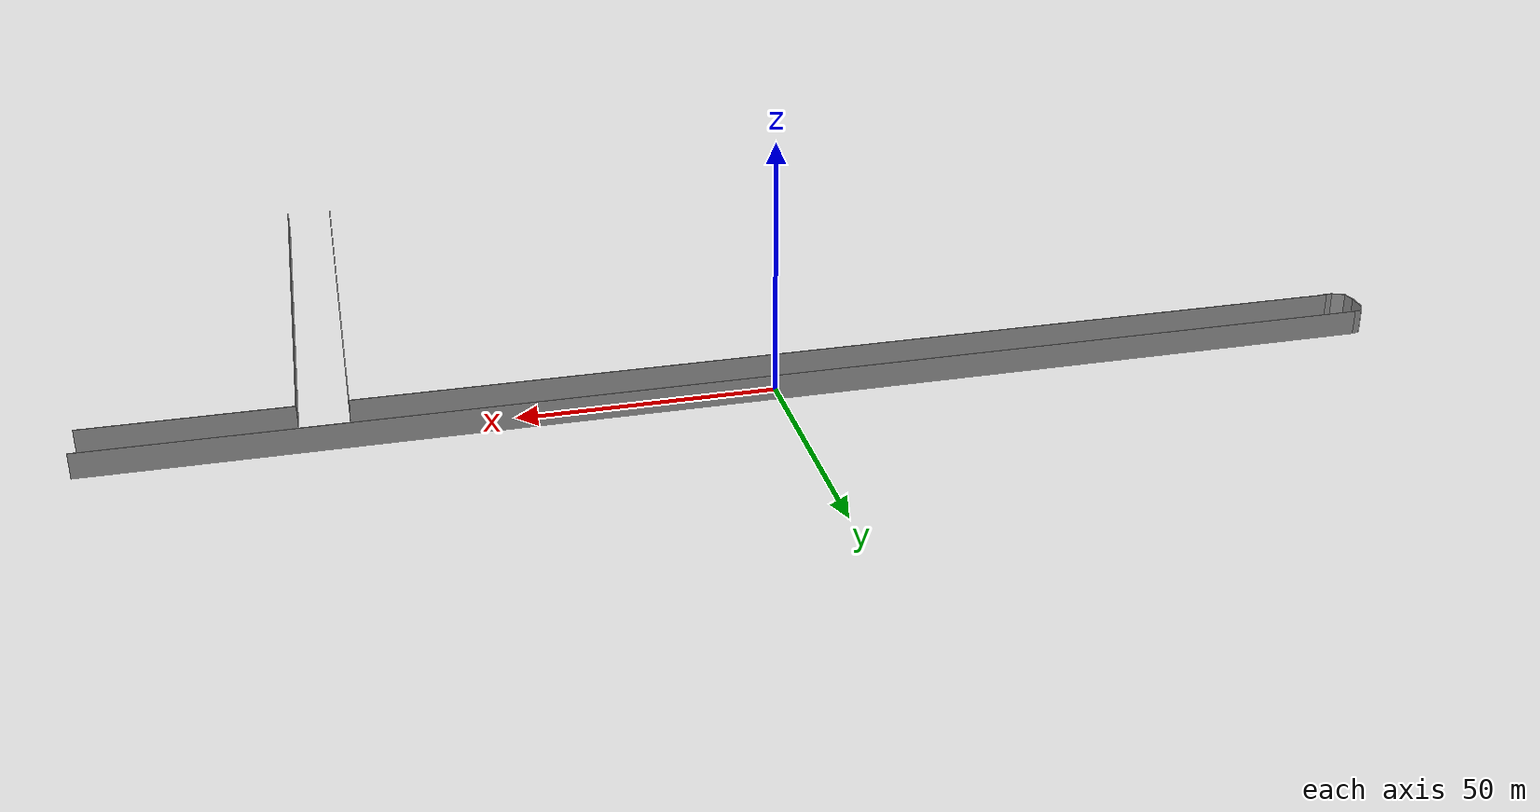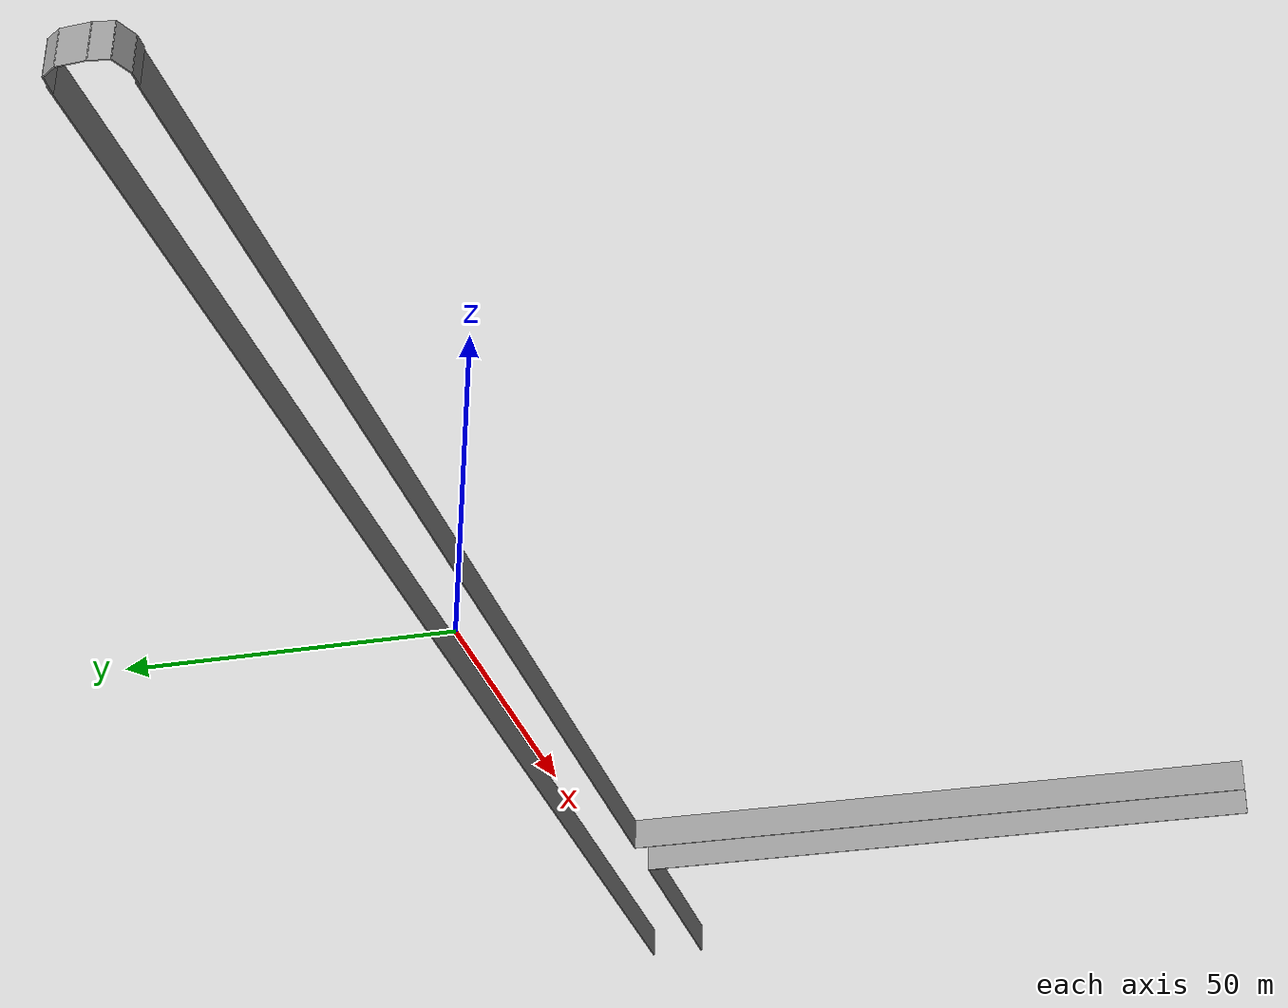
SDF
<?xml version='1.0'?>
<sdf version='1.7'>
  <model name='Model3'>
    <pose>2.35727 -50.523 0 0 -0 0</pose>
    <link name='Wall_53'>
      <collision name='Wall_53_Collision'>
        <geometry>
          <box>
            <size>200 0.15 5</size>
          </box>
        </geometry>
        <pose>0 0 2.5 0 -0 0</pose>
      </collision>
      <visual name='Wall_53_Visual'>
        <pose>0 0 2.5 0 -0 0</pose>
        <geometry>
          <box>
            <size>200 0.15 5</size>
          </box>
        </geometry>
        <material>
          <script>
            <uri>file://media/materials/scripts/gazebo.material</uri>
            <name>Gazebo/Grey</name>
          </script>
          <ambient>1 1 1 1</ambient>
        </material>
        <meta>
          <layer>0</layer>
        </meta>
      </visual>
      <pose>-22.1613 45.415 0 0 -0 0</pose>
    </link>
    <link name='Wall_55'>
      <collision name='Wall_55_Collision'>
        <geometry>
          <box>
            <size>250 0.15 5</size>
          </box>
        </geometry>
        <pose>0 0 2.5 0 -0 0</pose>
      </collision>
      <visual name='Wall_55_Visual'>
        <pose>0 0 2.5 0 -0 0</pose>
        <geometry>
          <box>
            <size>250 0.15 5</size>
          </box>
        </geometry>
        <material>
          <script>
            <uri>file://media/materials/scripts/gazebo.material</uri>
            <name>Gazebo/Grey</name>
          </script>
          <ambient>1 1 1 1</ambient>
        </material>
        <meta>
          <layer>0</layer>
        </meta>
      </visual>
      <pose>1.43773 54.435 0 0 -0 0</pose>
    </link>
    <link name='Wall_59'>
      <collision name='Wall_59_Collision'>
        <geometry>
          <box>
            <size>2 0.15 5</size>
          </box>
        </geometry>
        <pose>0 0 2.5 0 -0 0</pose>
      </collision>
      <visual name='Wall_59_Visual'>
        <pose>0 0 2.5 0 -0 0</pose>
        <geometry>
          <box>
            <size>2 0.15 5</size>
          </box>
        </geometry>
        <material>
          <script>
            <uri>file://media/materials/scripts/gazebo.material</uri>
            <name>Gazebo/Grey</name>
          </script>
          <ambient>1 1 1 1</ambient>
        </material>
        <meta>
          <layer>0</layer>
        </meta>
      </visual>
      <pose>-122.601 45.231 0 0 -0 3.14159</pose>
    </link>
    <link name='Wall_60'>
      <collision name='Wall_60_Collision'>
        <geometry>
          <box>
            <size>2.82065 0.15 5</size>
          </box>
        </geometry>
        <pose>0 0 2.5 0 -0 0</pose>
      </collision>
      <visual name='Wall_60_Visual'>
        <pose>0 0 2.5 0 -0 0</pose>
        <geometry>
          <box>
            <size>2.82065 0.15 5</size>
          </box>
        </geometry>
        <material>
          <script>
            <uri>file://media/materials/scripts/gazebo.material</uri>
            <name>Gazebo/Grey</name>
          </script>
          <ambient>1 1 1 1</ambient>
        </material>
        <meta>
          <layer>0</layer>
        </meta>
      </visual>
      <pose>-124.735 45.799 0 0 -0 2.70223</pose>
    </link>
    <link name='Wall_61'>
      <collision name='Wall_61_Collision'>
        <geometry>
          <box>
            <size>2.60652 0.15 5</size>
          </box>
        </geometry>
        <pose>0 0 2.5 0 -0 0</pose>
      </collision>
      <visual name='Wall_61_Visual'>
        <pose>0 0 2.5 0 -0 0</pose>
        <geometry>
          <box>
            <size>2.60652 0.15 5</size>
          </box>
        </geometry>
        <material>
          <script>
            <uri>file://media/materials/scripts/gazebo.material</uri>
            <name>Gazebo/Grey</name>
          </script>
          <ambient>1 1 1 1</ambient>
        </material>
        <meta>
          <layer>0</layer>
        </meta>
      </visual>
      <pose>-126.147 47.578 0 0 -0 1.73768</pose>
    </link>
    <link name='Wall_62'>
      <collision name='Wall_62_Collision'>
        <geometry>
          <box>
            <size>3.75378 0.15 5</size>
          </box>
        </geometry>
        <pose>0 0 2.5 0 -0 0</pose>
      </collision>
      <visual name='Wall_62_Visual'>
        <pose>0 0 2.5 0 -0 0</pose>
        <geometry>
          <box>
            <size>3.75378 0.15 5</size>
          </box>
        </geometry>
        <material>
          <script>
            <uri>file://media/materials/scripts/gazebo.material</uri>
            <name>Gazebo/Grey</name>
          </script>
          <ambient>1 1 1 1</ambient>
        </material>
        <meta>
          <layer>0</layer>
        </meta>
      </visual>
      <pose>-126.269 50.589 0 0 -0 1.525</pose>
    </link>
    <link name='Wall_63'>
      <collision name='Wall_63_Collision'>
        <geometry>
          <box>
            <size>2.30184 0.15 5</size>
          </box>
        </geometry>
        <pose>0 0 2.5 0 -0 0</pose>
      </collision>
      <visual name='Wall_63_Visual'>
        <pose>0 0 2.5 0 -0 0</pose>
        <geometry>
          <box>
            <size>2.30184 0.15 5</size>
          </box>
        </geometry>
        <material>
          <script>
            <uri>file://media/materials/scripts/gazebo.material</uri>
            <name>Gazebo/Grey</name>
          </script>
          <ambient>1 1 1 1</ambient>
        </material>
        <meta>
          <layer>0</layer>
        </meta>
      </visual>
      <pose>-125.609 53.297 0 0 -0 1.00432</pose>
    </link>
    <link name='Wall_64'>
      <collision name='Wall_64_Collision'>
        <geometry>
          <box>
            <size>2.75521 0.15 5</size>
          </box>
        </geometry>
        <pose>0 0 2.5 0 -0 0</pose>
      </collision>
      <visual name='Wall_64_Visual'>
        <pose>0 0 2.5 0 -0 0</pose>
        <geometry>
          <box>
            <size>2.75521 0.15 5</size>
          </box>
        </geometry>
        <material>
          <script>
            <uri>file://media/materials/scripts/gazebo.material</uri>
            <name>Gazebo/Grey</name>
          </script>
          <ambient>1 1 1 1</ambient>
        </material>
        <meta>
          <layer>0</layer>
        </meta>
      </visual>
      <pose>-123.731 54.287 0 0 -0 0.062993</pose>
    </link>
    <link name='Wall_66'>
      <collision name='Wall_66_Collision'>
        <geometry>
          <box>
            <size>100 0.15 5</size>
          </box>
        </geometry>
        <pose>0 0 2.5 0 -0 0</pose>
      </collision>
      <visual name='Wall_66_Visual'>
        <pose>0 0 2.5 0 -0 0</pose>
        <geometry>
          <box>
            <size>100 0.15 5</size>
          </box>
        </geometry>
        <material>
          <script>
            <uri>file://media/materials/scripts/gazebo.material</uri>
            <name>Gazebo/Grey</name>
          </script>
          <ambient>1 1 1 1</ambient>
        </material>
        <meta>
          <layer>0</layer>
        </meta>
      </visual>
      <pose>77.7637 -4.51 0 0 -0 -1.5708</pose>
    </link>
    <link name='Wall_68'>
      <collision name='Wall_68_Collision'>
        <geometry>
          <box>
            <size>100 0.15 5</size>
          </box>
        </geometry>
        <pose>0 0 2.5 0 -0 0</pose>
      </collision>
      <visual name='Wall_68_Visual'>
        <pose>0 0 2.5 0 -0 0</pose>
        <geometry>
          <box>
            <size>100 0.15 5</size>
          </box>
        </geometry>
        <material>
          <script>
            <uri>file://media/materials/scripts/gazebo.material</uri>
            <name>Gazebo/Grey</name>
          </script>
          <ambient>1 1 1 1</ambient>
        </material>
        <meta>
          <layer>0</layer>
        </meta>
      </visual>
      <pose>87.2187 -4.456 0 0 -0 -1.57204</pose>
    </link>
    <link name='Wall_70'>
      <collision name='Wall_70_Collision'>
        <geometry>
          <box>
            <size>39.0043 0.15 5</size>
          </box>
        </geometry>
        <pose>0 0 2.5 0 -0 0</pose>
      </collision>
      <visual name='Wall_70_Visual'>
        <pose>0 0 2.5 0 -0 0</pose>
        <geometry>
          <box>
            <size>39.0043 0.15 5</size>
          </box>
        </geometry>
        <material>
          <script>
            <uri>file://media/materials/scripts/gazebo.material</uri>
            <name>Gazebo/Grey</name>
          </script>
          <ambient>1 1 1 1</ambient>
        </material>
        <meta>
          <layer>0</layer>
        </meta>
      </visual>
      <pose>106.708 45.469 0 0 -0 0</pose>
    </link>
    <static>1</static>
  </model>
</sdf>
